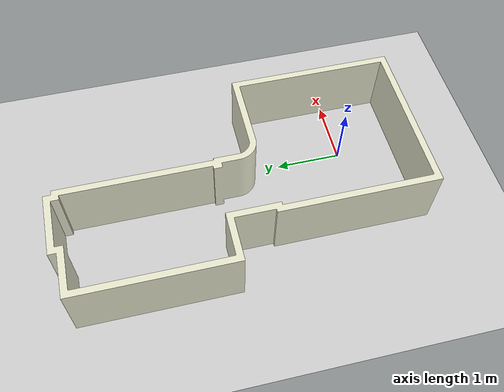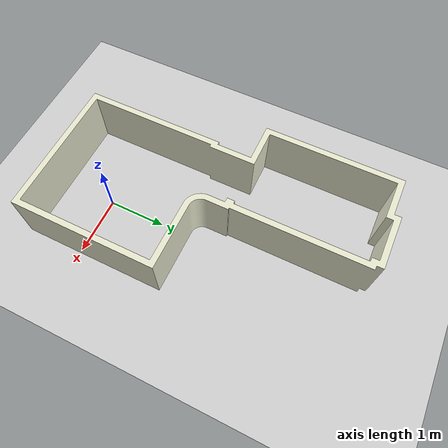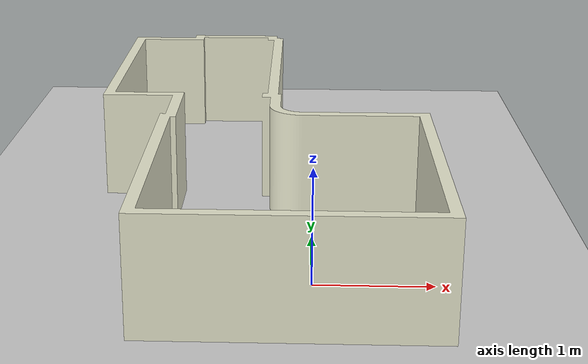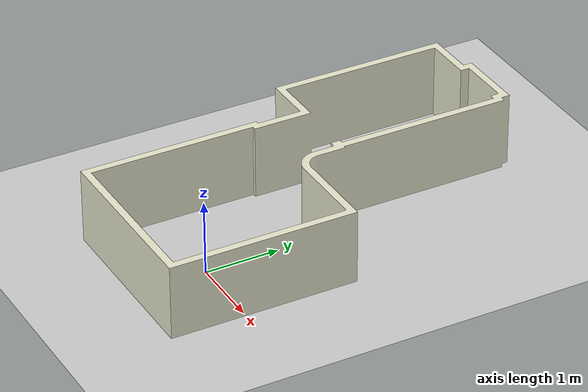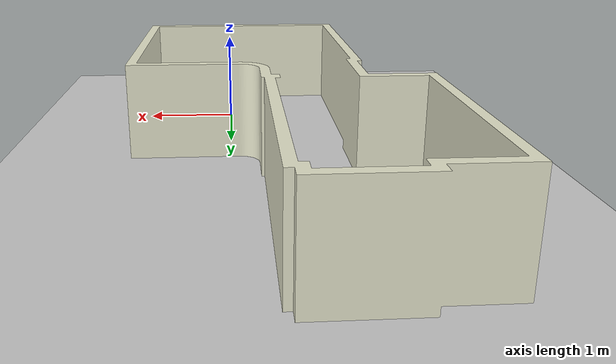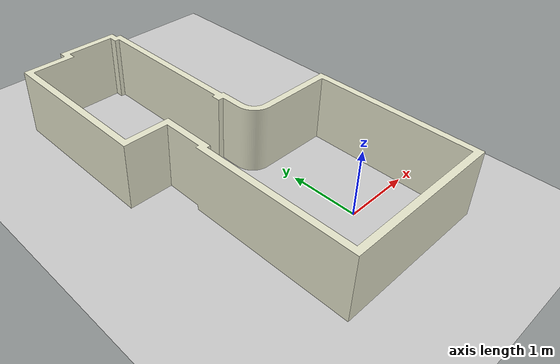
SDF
<?xml version="1.0" ?>
<sdf version="1.8">
  <world name="kitchen_world">

    <physics name="1ms" type="ignored">
      <max_step_size>0.001</max_step_size>
      <real_time_factor>1.0</real_time_factor>
    </physics>
    <plugin filename="gz-sim-physics-system" name="gz::sim::systems::Physics"></plugin>
    <plugin filename="gz-sim-user-commands-system" name="gz::sim::systems::UserCommands"></plugin>
    <plugin filename="gz-sim-scene-broadcaster-system" name="gz::sim::systems::SceneBroadcaster"></plugin>

    <light type="directional" name="sun">
      <cast_shadows>true</cast_shadows>
      <pose>0 0 10 0 0 0</pose>
      <diffuse>0.8 0.8 0.8 1</diffuse>
      <specular>0.2 0.2 0.2 1</specular>
      <direction>-0.5 0.1 -0.9</direction>
    </light>

    <model name="ground_plane">
      <static>true</static>
      <link name="link">
        <collision name="collision"><geometry><plane><normal>0 0 1</normal><size>100 100</size></plane></geometry></collision>
        <visual name="visual"><geometry><plane><normal>0 0 1</normal><size>100 100</size></plane></geometry>
          <material><ambient>0.8 0.8 0.8 1</ambient><diffuse>0.8 0.8 0.8 1</diffuse></material>
        </visual>
      </link>
    </model>

    <model name="kitchen">
      <static>true</static>
      <pose>-2 -1 0 0 0 0</pose>
      <link name="walls">
        <collision name="collision">
          <geometry>
            <mesh>
              <uri>file:///home/oleksandr/ros2_ws/src/fcm_project/fcm_digital_twin/worlds/kitchen.STL</uri>
              <scale>1 1 1</scale>
            </mesh>
          </geometry>
        </collision>
        <visual name="visual">
          <geometry>
            <mesh>
              <uri>file:///home/oleksandr/ros2_ws/src/fcm_project/fcm_digital_twin/worlds/kitchen.STL</uri>
              <scale>1 1 1</scale>
            </mesh>
          </geometry>
          <material><ambient>0.9 0.9 0.8 1</ambient><diffuse>0.9 0.9 0.8 1</diffuse></material>
        </visual>
      </link>
    </model>

  </world>
</sdf>
